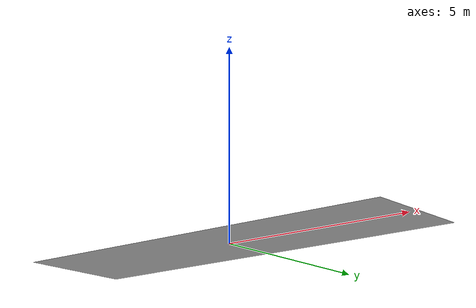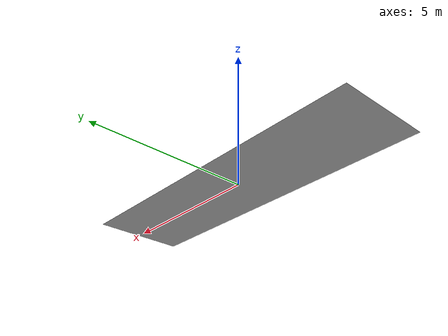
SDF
<?xml version="1.0" ?>
<sdf version="1.5">
  <model name="stair_cover_two">
    <static>true</static>
    <pose>0 0 0 0 0 0</pose>
    <link name="link">
      <collision name="collision">
        <geometry>
          <mesh>
            <uri>model://stair_cover_two/untitled.dae</uri>
          </mesh>
        </geometry>
      </collision>
      <visual name="visual">
        <cast_shadows>false</cast_shadows>
        <geometry>
          <mesh>
            <uri>model://stair_cover_two/untitled.dae</uri>
          </mesh>
        </geometry>
      </visual>
    </link>
  </model>
</sdf>
